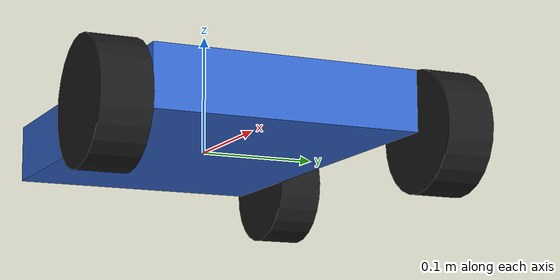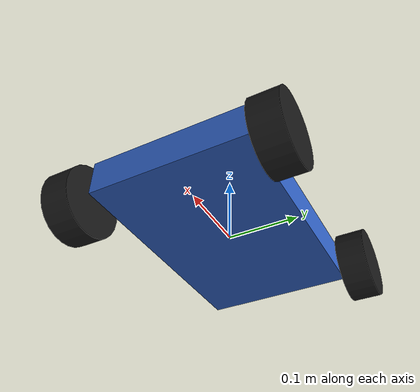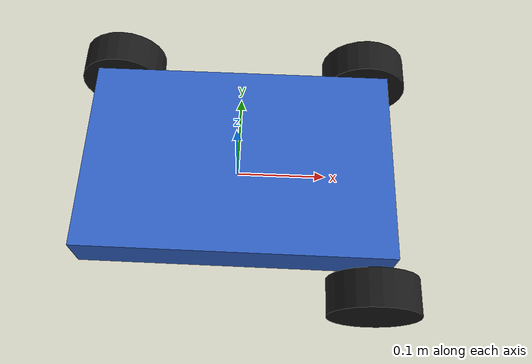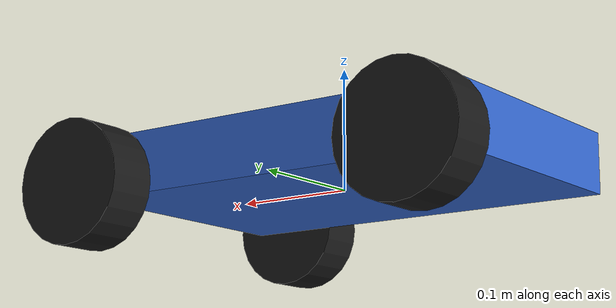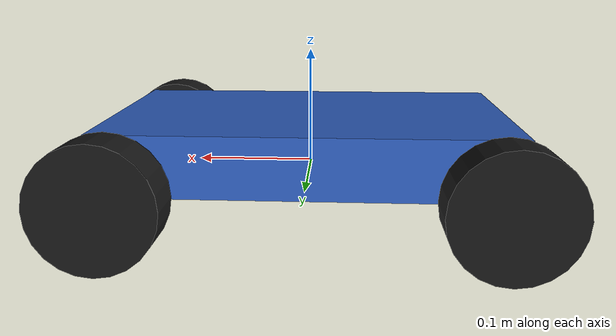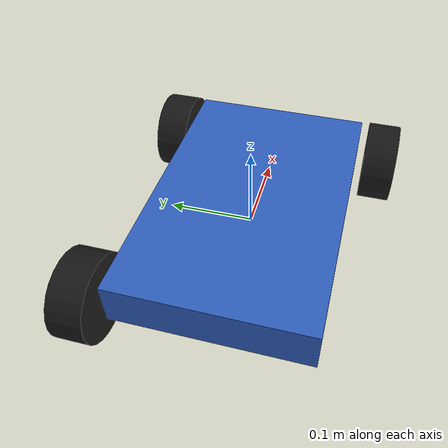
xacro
<?xml version="1.0"?>
<robot name="mi_robot" xmlns:xacro="http://www.ros.org/wiki/xacro">

  <xacro:arg name="rueda_radio" default="0.05"/>
  <xacro:arg name="distancia_ejes" default="0.30"/>
  <xacro:arg name="separacion_ruedas" default="0.28"/>

  <!-- ===================== Parámetros ===================== -->
  <xacro:property name="rueda_radio" value="$(arg rueda_radio)"/>
  <xacro:property name="distancia_ejes" value="$(arg distancia_ejes)"/>        <!-- wheelbase -->
  <xacro:property name="separacion_ruedas" value="$(arg separacion_ruedas)"/>  <!-- track -->
  <xacro:property name="lx" value="${distancia_ejes / 2.0}"/>
  <xacro:property name="ly" value="${separacion_ruedas / 2.0}"/>
  <xacro:property name="rueda_ancho" value="0.04"/>
  <xacro:property name="rueda_masa" value="0.3"/>

  <xacro:property name="chasis_largo" value="${distancia_ejes + 0.04}"/>
  <xacro:property name="chasis_ancho" value="${separacion_ruedas - rueda_ancho - 0.02}"/>
  <xacro:property name="chasis_alto" value="0.05"/>
  <xacro:property name="chasis_masa" value="3.0"/>

  <!-- ===================== Inercias ===================== -->
  <xacro:macro name="inercia_caja" params="m x y z">
    <inertia ixx="${m*(y*y + z*z)/12.0}" ixy="0" ixz="0"
             iyy="${m*(x*x + z*z)/12.0}" iyz="0"
             izz="${m*(x*x + y*y)/12.0}"/>
  </xacro:macro>
  <!-- Cilindro con eje a lo largo de z local -->
  <xacro:macro name="inercia_cilindro" params="m r h">
    <inertia ixx="${m*(3*r*r + h*h)/12.0}" ixy="0" ixz="0"
             iyy="${m*(3*r*r + h*h)/12.0}" iyz="0"
             izz="${m*r*r/2.0}"/>
  </xacro:macro>

  <!-- ===================== Chasis ===================== -->
  <link name="base_link">
    <visual>
      <origin xyz="0 0 0.02" rpy="0 0 0"/>
      <geometry><box size="${chasis_largo} ${chasis_ancho} ${chasis_alto}"/></geometry>
      <material name="azul"><color rgba="0.2 0.4 0.8 1"/></material>
    </visual>
    <collision>
      <origin xyz="0 0 0.02" rpy="0 0 0"/>
      <geometry><box size="${chasis_largo} ${chasis_ancho} ${chasis_alto}"/></geometry>
    </collision>
    <inertial>
      <origin xyz="0 0 0.02" rpy="0 0 0"/>
      <mass value="${chasis_masa}"/>
      <xacro:inercia_caja m="${chasis_masa}" x="${chasis_largo}" y="${chasis_ancho}" z="${chasis_alto}"/>
    </inertial>
  </link>

  <!-- ===================== Ruedas ===================== -->
  <xacro:macro name="rueda" params="prefijo x_signo y_signo">
    <link name="rueda_${prefijo}">
      <visual>
        <geometry><cylinder radius="${rueda_radio}" length="${rueda_ancho}"/></geometry>
        <material name="negro"><color rgba="0.1 0.1 0.1 1"/></material>
      </visual>
      <collision>
        <geometry><sphere radius="${rueda_radio}"/></geometry>
      </collision>
      <inertial>
        <mass value="${rueda_masa}"/>
        <xacro:inercia_cilindro m="${rueda_masa}" r="${rueda_radio}" h="${rueda_ancho}"/>
      </inertial>
    </link>

    <joint name="joint_rueda_${prefijo}" type="continuous">
      <parent link="base_link"/>
      <child link="rueda_${prefijo}"/>
      <!-- rpy = -π/2: el eje z de la rueda queda apuntando a +y, así ω > 0 hace avanzar al robot en +x -->
      <origin xyz="${x_signo*lx} ${y_signo*ly} 0" rpy="${-pi/2} 0 0"/>
      <axis xyz="0 0 1"/>
    </joint>
  </xacro:macro>

  <xacro:rueda prefijo="del_izq" x_signo="1"  y_signo="1"/>
  <xacro:rueda prefijo="del_der" x_signo="1"  y_signo="-1"/>
  <xacro:rueda prefijo="tra_izq" x_signo="-1" y_signo="1"/>
  <!-- TODO (R-1): instanciar la rueda trasera derecha (tra_der) -->

  <!-- ===================== RPLIDAR A3 ===================== -->

  <!-- ===================== Plugins de Gazebo ===================== -->
  <xacro:macro name="motor" params="prefijo">
    <plugin filename="gz-sim-joint-controller-system" name="gz::sim::systems::JointController">
      <joint_name>joint_rueda_${prefijo}</joint_name>
      <use_force_commands>false</use_force_commands>
      <topic>/vel_rueda_${prefijo}</topic>
    </plugin>
  </xacro:macro>

  <gazebo>
    <xacro:motor prefijo="del_izq"/>
    <xacro:motor prefijo="del_der"/>
    <xacro:motor prefijo="tra_izq"/>
    <!-- TODO (R-1): motor de la rueda trasera derecha -->
    <!-- Encoders: publica el estado de las ruedas -->
    <plugin filename="gz-sim-joint-state-publisher-system"
            name="gz::sim::systems::JointStatePublisher"/>
  </gazebo>

</robot>
